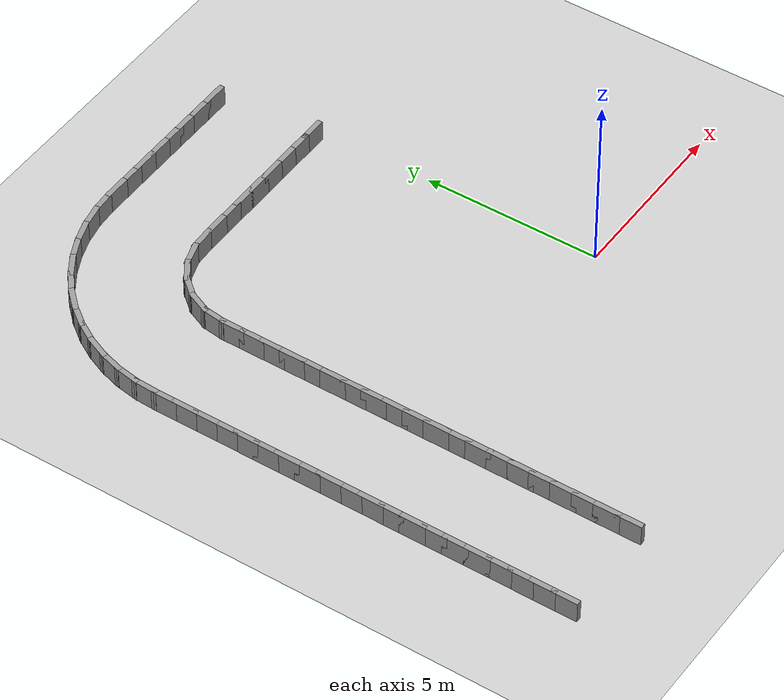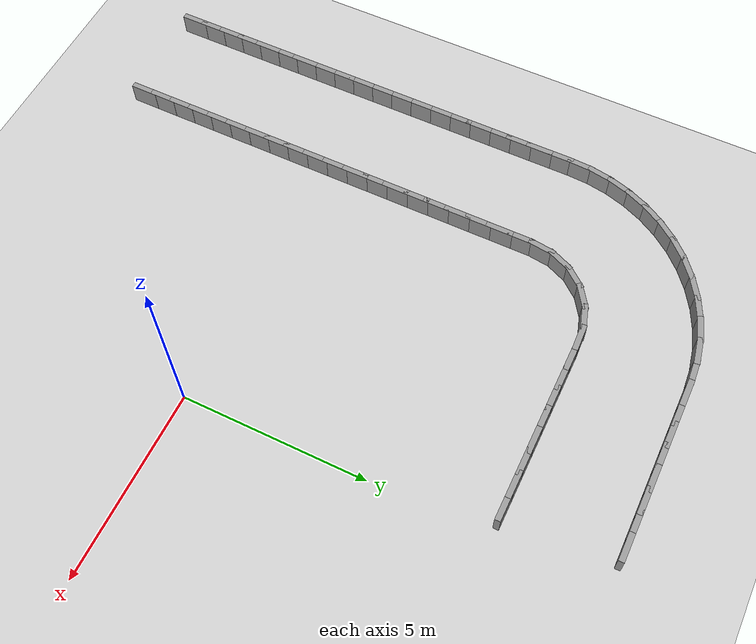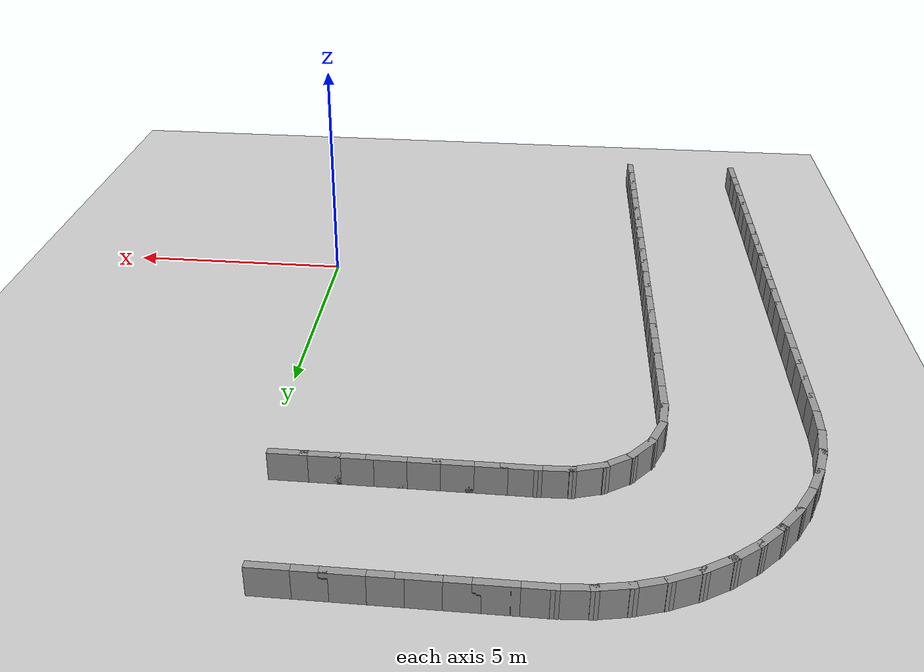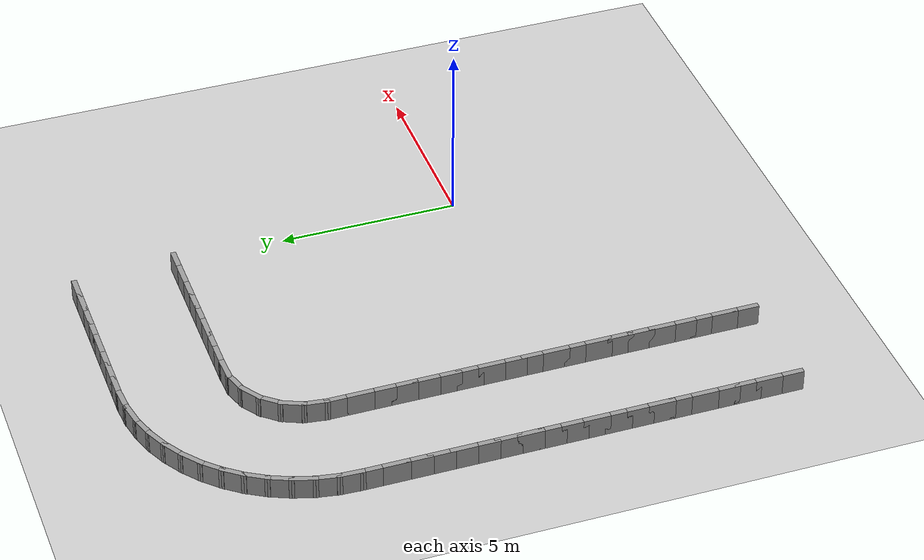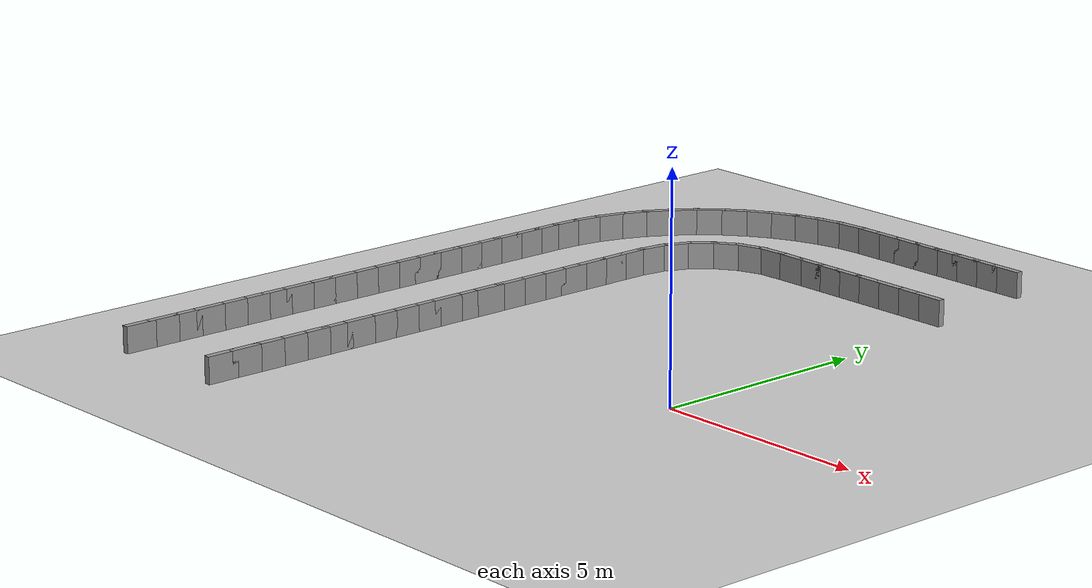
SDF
<sdf version="1.7">
 <world name="default">
  <model name="ground_plane">
   <static>1</static>
   <link name="link">
    <collision name="collision">
     <geometry><plane><normal>0 0 1</normal><size>100 100</size></plane></geometry>
     <surface><friction><ode><mu>100</mu><mu2>50</mu2></ode></friction></surface>
    </collision>
    <visual name="visual">
     <cast_shadows>0</cast_shadows>
     <geometry><plane><normal>0 0 1</normal><size>100 100</size></plane></geometry>
     <material>
      <script><uri>file://media/materials/scripts/gazebo.material</uri><name>Gazebo/Grey</name></script>
     </material>
    </visual>
   </link>
  </model>
  <model name="rand_rrect_00">
   <link name="Wall_15">
    <collision name="Wall_15_Collision">
     <geometry><box><size>0.7500 0.1500 0.6000</size></box></geometry>
     <pose>0 0 0.3000 0 -0 0</pose>
    </collision>
    <visual name="Wall_15_Visual">
     <pose>0 0 0.3000 0 -0 0</pose>
     <geometry><box><size>0.7500 0.1500 0.6000</size></box></geometry>
     <material>
      <script><uri>file://media/materials/scripts/gazebo.material</uri><name>Gazebo/Grey</name></script>
      <ambient>1 1 1 1</ambient>
     </material>
    </visual>
    <pose>-0.6151 8.1864 0 0 -0 3.14159</pose>
   </link>
   <link name="Wall_16">
    <collision name="Wall_16_Collision">
     <geometry><box><size>0.7500 0.1500 0.6000</size></box></geometry>
     <pose>0 0 0.3000 0 -0 0</pose>
    </collision>
    <visual name="Wall_16_Visual">
     <pose>0 0 0.3000 0 -0 0</pose>
     <geometry><box><size>0.7500 0.1500 0.6000</size></box></geometry>
     <material>
      <script><uri>file://media/materials/scripts/gazebo.material</uri><name>Gazebo/Grey</name></script>
      <ambient>1 1 1 1</ambient>
     </material>
    </visual>
    <pose>-1.2151 8.1864 0 0 -0 3.14159</pose>
   </link>
   <link name="Wall_17">
    <collision name="Wall_17_Collision">
     <geometry><box><size>0.7500 0.1500 0.6000</size></box></geometry>
     <pose>0 0 0.3000 0 -0 0</pose>
    </collision>
    <visual name="Wall_17_Visual">
     <pose>0 0 0.3000 0 -0 0</pose>
     <geometry><box><size>0.7500 0.1500 0.6000</size></box></geometry>
     <material>
      <script><uri>file://media/materials/scripts/gazebo.material</uri><name>Gazebo/Grey</name></script>
      <ambient>1 1 1 1</ambient>
     </material>
    </visual>
    <pose>-1.8151 8.1864 0 0 -0 3.14159</pose>
   </link>
   <link name="Wall_18">
    <collision name="Wall_18_Collision">
     <geometry><box><size>0.7500 0.1500 0.6000</size></box></geometry>
     <pose>0 0 0.3000 0 -0 0</pose>
    </collision>
    <visual name="Wall_18_Visual">
     <pose>0 0 0.3000 0 -0 0</pose>
     <geometry><box><size>0.7500 0.1500 0.6000</size></box></geometry>
     <material>
      <script><uri>file://media/materials/scripts/gazebo.material</uri><name>Gazebo/Grey</name></script>
      <ambient>1 1 1 1</ambient>
     </material>
    </visual>
    <pose>-2.4151 8.1864 0 0 -0 3.14159</pose>
   </link>
   <link name="Wall_19">
    <collision name="Wall_19_Collision">
     <geometry><box><size>0.7500 0.1500 0.6000</size></box></geometry>
     <pose>0 0 0.3000 0 -0 0</pose>
    </collision>
    <visual name="Wall_19_Visual">
     <pose>0 0 0.3000 0 -0 0</pose>
     <geometry><box><size>0.7500 0.1500 0.6000</size></box></geometry>
     <material>
      <script><uri>file://media/materials/scripts/gazebo.material</uri><name>Gazebo/Grey</name></script>
      <ambient>1 1 1 1</ambient>
     </material>
    </visual>
    <pose>-3.0151 8.1864 0 0 -0 3.14159</pose>
   </link>
   <link name="Wall_20">
    <collision name="Wall_20_Collision">
     <geometry><box><size>0.7500 0.1500 0.6000</size></box></geometry>
     <pose>0 0 0.3000 0 -0 0</pose>
    </collision>
    <visual name="Wall_20_Visual">
     <pose>0 0 0.3000 0 -0 0</pose>
     <geometry><box><size>0.7500 0.1500 0.6000</size></box></geometry>
     <material>
      <script><uri>file://media/materials/scripts/gazebo.material</uri><name>Gazebo/Grey</name></script>
      <ambient>1 1 1 1</ambient>
     </material>
    </visual>
    <pose>-3.6151 8.1864 0 0 -0 3.14159</pose>
   </link>
   <link name="Wall_21">
    <collision name="Wall_21_Collision">
     <geometry><box><size>0.7500 0.1500 0.6000</size></box></geometry>
     <pose>0 0 0.3000 0 -0 0</pose>
    </collision>
    <visual name="Wall_21_Visual">
     <pose>0 0 0.3000 0 -0 0</pose>
     <geometry><box><size>0.7500 0.1500 0.6000</size></box></geometry>
     <material>
      <script><uri>file://media/materials/scripts/gazebo.material</uri><name>Gazebo/Grey</name></script>
      <ambient>1 1 1 1</ambient>
     </material>
    </visual>
    <pose>-4.2151 8.1864 0 0 -0 3.14159</pose>
   </link>
   <link name="Wall_22">
    <collision name="Wall_22_Collision">
     <geometry><box><size>0.7500 0.1500 0.6000</size></box></geometry>
     <pose>0 0 0.3000 0 -0 0</pose>
    </collision>
    <visual name="Wall_22_Visual">
     <pose>0 0 0.3000 0 -0 0</pose>
     <geometry><box><size>0.7500 0.1500 0.6000</size></box></geometry>
     <material>
      <script><uri>file://media/materials/scripts/gazebo.material</uri><name>Gazebo/Grey</name></script>
      <ambient>1 1 1 1</ambient>
     </material>
    </visual>
    <pose>-4.8151 8.1864 0 0 -0 3.14159</pose>
   </link>
   <link name="Wall_23">
    <collision name="Wall_23_Collision">
     <geometry><box><size>0.7492 0.1500 0.6000</size></box></geometry>
     <pose>0 0 0.3000 0 -0 0</pose>
    </collision>
    <visual name="Wall_23_Visual">
     <pose>0 0 0.3000 0 -0 0</pose>
     <geometry><box><size>0.7492 0.1500 0.6000</size></box></geometry>
     <material>
      <script><uri>file://media/materials/scripts/gazebo.material</uri><name>Gazebo/Grey</name></script>
      <ambient>1 1 1 1</ambient>
     </material>
    </visual>
    <pose>-5.4144 8.1730 0 0 -0 -3.09682</pose>
   </link>
   <link name="Wall_24">
    <collision name="Wall_24_Collision">
     <geometry><box><size>0.7480 0.1500 0.6000</size></box></geometry>
     <pose>0 0 0.3000 0 -0 0</pose>
    </collision>
    <visual name="Wall_24_Visual">
     <pose>0 0 0.3000 0 -0 0</pose>
     <geometry><box><size>0.7480 0.1500 0.6000</size></box></geometry>
     <material>
      <script><uri>file://media/materials/scripts/gazebo.material</uri><name>Gazebo/Grey</name></script>
      <ambient>1 1 1 1</ambient>
     </material>
    </visual>
    <pose>-5.9991 8.0706 0 0 -0 -2.83928</pose>
   </link>
   <link name="Wall_25">
    <collision name="Wall_25_Collision">
     <geometry><box><size>0.7480 0.1500 0.6000</size></box></geometry>
     <pose>0 0 0.3000 0 -0 0</pose>
    </collision>
    <visual name="Wall_25_Visual">
     <pose>0 0 0.3000 0 -0 0</pose>
     <geometry><box><size>0.7480 0.1500 0.6000</size></box></geometry>
     <material>
      <script><uri>file://media/materials/scripts/gazebo.material</uri><name>Gazebo/Grey</name></script>
      <ambient>1 1 1 1</ambient>
     </material>
    </visual>
    <pose>-6.5334 7.8159 0 0 -0 -2.55420</pose>
   </link>
   <link name="Wall_26">
    <collision name="Wall_26_Collision">
     <geometry><box><size>0.7480 0.1500 0.6000</size></box></geometry>
     <pose>0 0 0.3000 0 -0 0</pose>
    </collision>
    <visual name="Wall_26_Visual">
     <pose>0 0 0.3000 0 -0 0</pose>
     <geometry><box><size>0.7480 0.1500 0.6000</size></box></geometry>
     <material>
      <script><uri>file://media/materials/scripts/gazebo.material</uri><name>Gazebo/Grey</name></script>
      <ambient>1 1 1 1</ambient>
     </material>
    </visual>
    <pose>-6.9745 7.4212 0 0 -0 -2.26912</pose>
   </link>
   <link name="Wall_27">
    <collision name="Wall_27_Collision">
     <geometry><box><size>0.7480 0.1500 0.6000</size></box></geometry>
     <pose>0 0 0.3000 0 -0 0</pose>
    </collision>
    <visual name="Wall_27_Visual">
     <pose>0 0 0.3000 0 -0 0</pose>
     <geometry><box><size>0.7480 0.1500 0.6000</size></box></geometry>
     <material>
      <script><uri>file://media/materials/scripts/gazebo.material</uri><name>Gazebo/Grey</name></script>
      <ambient>1 1 1 1</ambient>
     </material>
    </visual>
    <pose>-7.2868 6.9184 0 0 -0 -1.98406</pose>
   </link>
   <link name="Wall_28">
    <collision name="Wall_28_Collision">
     <geometry><box><size>0.7480 0.1500 0.6000</size></box></geometry>
     <pose>0 0 0.3000 0 -0 0</pose>
    </collision>
    <visual name="Wall_28_Visual">
     <pose>0 0 0.3000 0 -0 0</pose>
     <geometry><box><size>0.7480 0.1500 0.6000</size></box></geometry>
     <material>
      <script><uri>file://media/materials/scripts/gazebo.material</uri><name>Gazebo/Grey</name></script>
      <ambient>1 1 1 1</ambient>
     </material>
    </visual>
    <pose>-7.4452 6.3480 0 0 -0 -1.69935</pose>
   </link>
   <link name="Wall_29">
    <collision name="Wall_29_Collision">
     <geometry><box><size>0.7500 0.1500 0.6000</size></box></geometry>
     <pose>0 0 0.3000 0 -0 0</pose>
    </collision>
    <visual name="Wall_29_Visual">
     <pose>0 0 0.3000 0 -0 0</pose>
     <geometry><box><size>0.7500 0.1500 0.6000</size></box></geometry>
     <material>
      <script><uri>file://media/materials/scripts/gazebo.material</uri><name>Gazebo/Grey</name></script>
      <ambient>1 1 1 1</ambient>
     </material>
    </visual>
    <pose>-7.4835 5.7515 0 0 -0 -1.57080</pose>
   </link>
   <link name="Wall_30">
    <collision name="Wall_30_Collision">
     <geometry><box><size>0.7500 0.1500 0.6000</size></box></geometry>
     <pose>0 0 0.3000 0 -0 0</pose>
    </collision>
    <visual name="Wall_30_Visual">
     <pose>0 0 0.3000 0 -0 0</pose>
     <geometry><box><size>0.7500 0.1500 0.6000</size></box></geometry>
     <material>
      <script><uri>file://media/materials/scripts/gazebo.material</uri><name>Gazebo/Grey</name></script>
      <ambient>1 1 1 1</ambient>
     </material>
    </visual>
    <pose>-7.4835 5.1515 0 0 -0 -1.57080</pose>
   </link>
   <link name="Wall_31">
    <collision name="Wall_31_Collision">
     <geometry><box><size>0.7500 0.1500 0.6000</size></box></geometry>
     <pose>0 0 0.3000 0 -0 0</pose>
    </collision>
    <visual name="Wall_31_Visual">
     <pose>0 0 0.3000 0 -0 0</pose>
     <geometry><box><size>0.7500 0.1500 0.6000</size></box></geometry>
     <material>
      <script><uri>file://media/materials/scripts/gazebo.material</uri><name>Gazebo/Grey</name></script>
      <ambient>1 1 1 1</ambient>
     </material>
    </visual>
    <pose>-7.4835 4.5515 0 0 -0 -1.57080</pose>
   </link>
   <link name="Wall_32">
    <collision name="Wall_32_Collision">
     <geometry><box><size>0.7500 0.1500 0.6000</size></box></geometry>
     <pose>0 0 0.3000 0 -0 0</pose>
    </collision>
    <visual name="Wall_32_Visual">
     <pose>0 0 0.3000 0 -0 0</pose>
     <geometry><box><size>0.7500 0.1500 0.6000</size></box></geometry>
     <material>
      <script><uri>file://media/materials/scripts/gazebo.material</uri><name>Gazebo/Grey</name></script>
      <ambient>1 1 1 1</ambient>
     </material>
    </visual>
    <pose>-7.4835 3.9515 0 0 -0 -1.57080</pose>
   </link>
   <link name="Wall_33">
    <collision name="Wall_33_Collision">
     <geometry><box><size>0.7500 0.1500 0.6000</size></box></geometry>
     <pose>0 0 0.3000 0 -0 0</pose>
    </collision>
    <visual name="Wall_33_Visual">
     <pose>0 0 0.3000 0 -0 0</pose>
     <geometry><box><size>0.7500 0.1500 0.6000</size></box></geometry>
     <material>
      <script><uri>file://media/materials/scripts/gazebo.material</uri><name>Gazebo/Grey</name></script>
      <ambient>1 1 1 1</ambient>
     </material>
    </visual>
    <pose>-7.4835 3.3515 0 0 -0 -1.57080</pose>
   </link>
   <link name="Wall_34">
    <collision name="Wall_34_Collision">
     <geometry><box><size>0.7500 0.1500 0.6000</size></box></geometry>
     <pose>0 0 0.3000 0 -0 0</pose>
    </collision>
    <visual name="Wall_34_Visual">
     <pose>0 0 0.3000 0 -0 0</pose>
     <geometry><box><size>0.7500 0.1500 0.6000</size></box></geometry>
     <material>
      <script><uri>file://media/materials/scripts/gazebo.material</uri><name>Gazebo/Grey</name></script>
      <ambient>1 1 1 1</ambient>
     </material>
    </visual>
    <pose>-7.4835 2.7515 0 0 -0 -1.57080</pose>
   </link>
   <link name="Wall_35">
    <collision name="Wall_35_Collision">
     <geometry><box><size>0.7500 0.1500 0.6000</size></box></geometry>
     <pose>0 0 0.3000 0 -0 0</pose>
    </collision>
    <visual name="Wall_35_Visual">
     <pose>0 0 0.3000 0 -0 0</pose>
     <geometry><box><size>0.7500 0.1500 0.6000</size></box></geometry>
     <material>
      <script><uri>file://media/materials/scripts/gazebo.material</uri><name>Gazebo/Grey</name></script>
      <ambient>1 1 1 1</ambient>
     </material>
    </visual>
    <pose>-7.4835 2.1515 0 0 -0 -1.57080</pose>
   </link>
   <link name="Wall_36">
    <collision name="Wall_36_Collision">
     <geometry><box><size>0.7500 0.1500 0.6000</size></box></geometry>
     <pose>0 0 0.3000 0 -0 0</pose>
    </collision>
    <visual name="Wall_36_Visual">
     <pose>0 0 0.3000 0 -0 0</pose>
     <geometry><box><size>0.7500 0.1500 0.6000</size></box></geometry>
     <material>
      <script><uri>file://media/materials/scripts/gazebo.material</uri><name>Gazebo/Grey</name></script>
      <ambient>1 1 1 1</ambient>
     </material>
    </visual>
    <pose>-7.4835 1.5515 0 0 -0 -1.57080</pose>
   </link>
   <link name="Wall_37">
    <collision name="Wall_37_Collision">
     <geometry><box><size>0.7500 0.1500 0.6000</size></box></geometry>
     <pose>0 0 0.3000 0 -0 0</pose>
    </collision>
    <visual name="Wall_37_Visual">
     <pose>0 0 0.3000 0 -0 0</pose>
     <geometry><box><size>0.7500 0.1500 0.6000</size></box></geometry>
     <material>
      <script><uri>file://media/materials/scripts/gazebo.material</uri><name>Gazebo/Grey</name></script>
      <ambient>1 1 1 1</ambient>
     </material>
    </visual>
    <pose>-7.4835 0.9515 0 0 -0 -1.57080</pose>
   </link>
   <link name="Wall_38">
    <collision name="Wall_38_Collision">
     <geometry><box><size>0.7500 0.1500 0.6000</size></box></geometry>
     <pose>0 0 0.3000 0 -0 0</pose>
    </collision>
    <visual name="Wall_38_Visual">
     <pose>0 0 0.3000 0 -0 0</pose>
     <geometry><box><size>0.7500 0.1500 0.6000</size></box></geometry>
     <material>
      <script><uri>file://media/materials/scripts/gazebo.material</uri><name>Gazebo/Grey</name></script>
      <ambient>1 1 1 1</ambient>
     </material>
    </visual>
    <pose>-7.4835 0.3515 0 0 -0 -1.57080</pose>
   </link>
   <link name="Wall_39">
    <collision name="Wall_39_Collision">
     <geometry><box><size>0.7500 0.1500 0.6000</size></box></geometry>
     <pose>0 0 0.3000 0 -0 0</pose>
    </collision>
    <visual name="Wall_39_Visual">
     <pose>0 0 0.3000 0 -0 0</pose>
     <geometry><box><size>0.7500 0.1500 0.6000</size></box></geometry>
     <material>
      <script><uri>file://media/materials/scripts/gazebo.material</uri><name>Gazebo/Grey</name></script>
      <ambient>1 1 1 1</ambient>
     </material>
    </visual>
    <pose>-7.4835 -0.2485 0 0 -0 -1.57080</pose>
   </link>
   <link name="Wall_40">
    <collision name="Wall_40_Collision">
     <geometry><box><size>0.7500 0.1500 0.6000</size></box></geometry>
     <pose>0 0 0.3000 0 -0 0</pose>
    </collision>
    <visual name="Wall_40_Visual">
     <pose>0 0 0.3000 0 -0 0</pose>
     <geometry><box><size>0.7500 0.1500 0.6000</size></box></geometry>
     <material>
      <script><uri>file://media/materials/scripts/gazebo.material</uri><name>Gazebo/Grey</name></script>
      <ambient>1 1 1 1</ambient>
     </material>
    </visual>
    <pose>-7.4835 -0.8485 0 0 -0 -1.57080</pose>
   </link>
   <link name="Wall_41">
    <collision name="Wall_41_Collision">
     <geometry><box><size>0.7500 0.1500 0.6000</size></box></geometry>
     <pose>0 0 0.3000 0 -0 0</pose>
    </collision>
    <visual name="Wall_41_Visual">
     <pose>0 0 0.3000 0 -0 0</pose>
     <geometry><box><size>0.7500 0.1500 0.6000</size></box></geometry>
     <material>
      <script><uri>file://media/materials/scripts/gazebo.material</uri><name>Gazebo/Grey</name></script>
      <ambient>1 1 1 1</ambient>
     </material>
    </visual>
    <pose>-7.4835 -1.4485 0 0 -0 -1.57080</pose>
   </link>
   <link name="Wall_42">
    <collision name="Wall_42_Collision">
     <geometry><box><size>0.7500 0.1500 0.6000</size></box></geometry>
     <pose>0 0 0.3000 0 -0 0</pose>
    </collision>
    <visual name="Wall_42_Visual">
     <pose>0 0 0.3000 0 -0 0</pose>
     <geometry><box><size>0.7500 0.1500 0.6000</size></box></geometry>
     <material>
      <script><uri>file://media/materials/scripts/gazebo.material</uri><name>Gazebo/Grey</name></script>
      <ambient>1 1 1 1</ambient>
     </material>
    </visual>
    <pose>-7.4835 -2.0485 0 0 -0 -1.57080</pose>
   </link>
   <link name="Wall_43">
    <collision name="Wall_43_Collision">
     <geometry><box><size>0.7500 0.1500 0.6000</size></box></geometry>
     <pose>0 0 0.3000 0 -0 0</pose>
    </collision>
    <visual name="Wall_43_Visual">
     <pose>0 0 0.3000 0 -0 0</pose>
     <geometry><box><size>0.7500 0.1500 0.6000</size></box></geometry>
     <material>
      <script><uri>file://media/materials/scripts/gazebo.material</uri><name>Gazebo/Grey</name></script>
      <ambient>1 1 1 1</ambient>
     </material>
    </visual>
    <pose>-7.4835 -2.6485 0 0 -0 -1.57080</pose>
   </link>
   <link name="Wall_44">
    <collision name="Wall_44_Collision">
     <geometry><box><size>0.7500 0.1500 0.6000</size></box></geometry>
     <pose>0 0 0.3000 0 -0 0</pose>
    </collision>
    <visual name="Wall_44_Visual">
     <pose>0 0 0.3000 0 -0 0</pose>
     <geometry><box><size>0.7500 0.1500 0.6000</size></box></geometry>
     <material>
      <script><uri>file://media/materials/scripts/gazebo.material</uri><name>Gazebo/Grey</name></script>
      <ambient>1 1 1 1</ambient>
     </material>
    </visual>
    <pose>-7.4835 -3.2485 0 0 -0 -1.57080</pose>
   </link>
   <link name="Wall_45">
    <collision name="Wall_45_Collision">
     <geometry><box><size>0.7500 0.1500 0.6000</size></box></geometry>
     <pose>0 0 0.3000 0 -0 0</pose>
    </collision>
    <visual name="Wall_45_Visual">
     <pose>0 0 0.3000 0 -0 0</pose>
     <geometry><box><size>0.7500 0.1500 0.6000</size></box></geometry>
     <material>
      <script><uri>file://media/materials/scripts/gazebo.material</uri><name>Gazebo/Grey</name></script>
      <ambient>1 1 1 1</ambient>
     </material>
    </visual>
    <pose>-7.4835 -3.8485 0 0 -0 -1.57080</pose>
   </link>
   <link name="Wall_46">
    <collision name="Wall_46_Collision">
     <geometry><box><size>0.7500 0.1500 0.6000</size></box></geometry>
     <pose>0 0 0.3000 0 -0 0</pose>
    </collision>
    <visual name="Wall_46_Visual">
     <pose>0 0 0.3000 0 -0 0</pose>
     <geometry><box><size>0.7500 0.1500 0.6000</size></box></geometry>
     <material>
      <script><uri>file://media/materials/scripts/gazebo.material</uri><name>Gazebo/Grey</name></script>
      <ambient>1 1 1 1</ambient>
     </material>
    </visual>
    <pose>-7.4835 -4.4485 0 0 -0 -1.57080</pose>
   </link>
   <link name="Wall_47">
    <collision name="Wall_47_Collision">
     <geometry><box><size>0.7500 0.1500 0.6000</size></box></geometry>
     <pose>0 0 0.3000 0 -0 0</pose>
    </collision>
    <visual name="Wall_47_Visual">
     <pose>0 0 0.3000 0 -0 0</pose>
     <geometry><box><size>0.7500 0.1500 0.6000</size></box></geometry>
     <material>
      <script><uri>file://media/materials/scripts/gazebo.material</uri><name>Gazebo/Grey</name></script>
      <ambient>1 1 1 1</ambient>
     </material>
    </visual>
    <pose>-7.4835 -5.0485 0 0 -0 -1.57080</pose>
   </link>
   <link name="Wall_48">
    <collision name="Wall_48_Collision">
     <geometry><box><size>0.7500 0.1500 0.6000</size></box></geometry>
     <pose>0 0 0.3000 0 -0 0</pose>
    </collision>
    <visual name="Wall_48_Visual">
     <pose>0 0 0.3000 0 -0 0</pose>
     <geometry><box><size>0.7500 0.1500 0.6000</size></box></geometry>
     <material>
      <script><uri>file://media/materials/scripts/gazebo.material</uri><name>Gazebo/Grey</name></script>
      <ambient>1 1 1 1</ambient>
     </material>
    </visual>
    <pose>-7.4835 -5.6485 0 0 -0 -1.57080</pose>
   </link>
   <link name="Wall_121">
    <collision name="Wall_121_Collision">
     <geometry><box><size>0.7500 0.1500 0.6000</size></box></geometry>
     <pose>0 0 0.3000 0 -0 0</pose>
    </collision>
    <visual name="Wall_121_Visual">
     <pose>0 0 0.3000 0 -0 0</pose>
     <geometry><box><size>0.7500 0.1500 0.6000</size></box></geometry>
     <material>
      <script><uri>file://media/materials/scripts/gazebo.material</uri><name>Gazebo/Grey</name></script>
      <ambient>1 1 1 1</ambient>
     </material>
    </visual>
    <pose>-0.9345 11.0389 0 0 -0 3.14159</pose>
   </link>
   <link name="Wall_122">
    <collision name="Wall_122_Collision">
     <geometry><box><size>0.7500 0.1500 0.6000</size></box></geometry>
     <pose>0 0 0.3000 0 -0 0</pose>
    </collision>
    <visual name="Wall_122_Visual">
     <pose>0 0 0.3000 0 -0 0</pose>
     <geometry><box><size>0.7500 0.1500 0.6000</size></box></geometry>
     <material>
      <script><uri>file://media/materials/scripts/gazebo.material</uri><name>Gazebo/Grey</name></script>
      <ambient>1 1 1 1</ambient>
     </material>
    </visual>
    <pose>-1.5345 11.0389 0 0 -0 3.14159</pose>
   </link>
   <link name="Wall_123">
    <collision name="Wall_123_Collision">
     <geometry><box><size>0.7500 0.1500 0.6000</size></box></geometry>
     <pose>0 0 0.3000 0 -0 0</pose>
    </collision>
    <visual name="Wall_123_Visual">
     <pose>0 0 0.3000 0 -0 0</pose>
     <geometry><box><size>0.7500 0.1500 0.6000</size></box></geometry>
     <material>
      <script><uri>file://media/materials/scripts/gazebo.material</uri><name>Gazebo/Grey</name></script>
      <ambient>1 1 1 1</ambient>
     </material>
    </visual>
    <pose>-2.1345 11.0389 0 0 -0 3.14159</pose>
   </link>
   <link name="Wall_124">
    <collision name="Wall_124_Collision">
     <geometry><box><size>0.7500 0.1500 0.6000</size></box></geometry>
     <pose>0 0 0.3000 0 -0 0</pose>
    </collision>
    <visual name="Wall_124_Visual">
     <pose>0 0 0.3000 0 -0 0</pose>
     <geometry><box><size>0.7500 0.1500 0.6000</size></box></geometry>
     <material>
      <script><uri>file://media/materials/scripts/gazebo.material</uri><name>Gazebo/Grey</name></script>
      <ambient>1 1 1 1</ambient>
     </material>
    </visual>
    <pose>-2.7345 11.0389 0 0 -0 3.14159</pose>
   </link>
   <link name="Wall_125">
    <collision name="Wall_125_Collision">
     <geometry><box><size>0.7500 0.1500 0.6000</size></box></geometry>
     <pose>0 0 0.3000 0 -0 0</pose>
    </collision>
    <visual name="Wall_125_Visual">
     <pose>0 0 0.3000 0 -0 0</pose>
     <geometry><box><size>0.7500 0.1500 0.6000</size></box></geometry>
     <material>
      <script><uri>file://media/materials/scripts/gazebo.material</uri><name>Gazebo/Grey</name></script>
      <ambient>1 1 1 1</ambient>
     </material>
    </visual>
    <pose>-3.3345 11.0389 0 0 -0 3.14159</pose>
   </link>
   <link name="Wall_126">
    <collision name="Wall_126_Collision">
     <geometry><box><size>0.7500 0.1500 0.6000</size></box></geometry>
     <pose>0 0 0.3000 0 -0 0</pose>
    </collision>
    <visual name="Wall_126_Visual">
     <pose>0 0 0.3000 0 -0 0</pose>
     <geometry><box><size>0.7500 0.1500 0.6000</size></box></geometry>
     <material>
      <script><uri>file://media/materials/scripts/gazebo.material</uri><name>Gazebo/Grey</name></script>
      <ambient>1 1 1 1</ambient>
     </material>
    </visual>
    <pose>-3.9345 11.0389 0 0 -0 3.14159</pose>
   </link>
   <link name="Wall_127">
    <collision name="Wall_127_Collision">
     <geometry><box><size>0.7500 0.1500 0.6000</size></box></geometry>
     <pose>0 0 0.3000 0 -0 0</pose>
    </collision>
    <visual name="Wall_127_Visual">
     <pose>0 0 0.3000 0 -0 0</pose>
     <geometry><box><size>0.7500 0.1500 0.6000</size></box></geometry>
     <material>
      <script><uri>file://media/materials/scripts/gazebo.material</uri><name>Gazebo/Grey</name></script>
      <ambient>1 1 1 1</ambient>
     </material>
    </visual>
    <pose>-4.5345 11.0389 0 0 -0 3.14159</pose>
   </link>
   <link name="Wall_128">
    <collision name="Wall_128_Collision">
     <geometry><box><size>0.7500 0.1500 0.6000</size></box></geometry>
     <pose>0 0 0.3000 0 -0 0</pose>
    </collision>
    <visual name="Wall_128_Visual">
     <pose>0 0 0.3000 0 -0 0</pose>
     <geometry><box><size>0.7500 0.1500 0.6000</size></box></geometry>
     <material>
      <script><uri>file://media/materials/scripts/gazebo.material</uri><name>Gazebo/Grey</name></script>
      <ambient>1 1 1 1</ambient>
     </material>
    </visual>
    <pose>-5.1345 11.0387 0 0 -0 -3.14105</pose>
   </link>
   <link name="Wall_129">
    <collision name="Wall_129_Collision">
     <geometry><box><size>0.7496 0.1500 0.6000</size></box></geometry>
     <pose>0 0 0.3000 0 -0 0</pose>
    </collision>
    <visual name="Wall_129_Visual">
     <pose>0 0 0.3000 0 -0 0</pose>
     <geometry><box><size>0.7496 0.1500 0.6000</size></box></geometry>
     <material>
      <script><uri>file://media/materials/scripts/gazebo.material</uri><name>Gazebo/Grey</name></script>
      <ambient>1 1 1 1</ambient>
     </material>
    </visual>
    <pose>-5.7335 11.0171 0 0 -0 -3.06985</pose>
   </link>
   <link name="Wall_130">
    <collision name="Wall_130_Collision">
     <geometry><box><size>0.7496 0.1500 0.6000</size></box></geometry>
     <pose>0 0 0.3000 0 -0 0</pose>
    </collision>
    <visual name="Wall_130_Visual">
     <pose>0 0 0.3000 0 -0 0</pose>
     <geometry><box><size>0.7496 0.1500 0.6000</size></box></geometry>
     <material>
      <script><uri>file://media/materials/scripts/gazebo.material</uri><name>Gazebo/Grey</name></script>
      <ambient>1 1 1 1</ambient>
     </material>
    </visual>
    <pose>-6.3268 10.9381 0 0 -0 -2.94881</pose>
   </link>
   <link name="Wall_131">
    <collision name="Wall_131_Collision">
     <geometry><box><size>0.7496 0.1500 0.6000</size></box></geometry>
     <pose>0 0 0.3000 0 -0 0</pose>
    </collision>
    <visual name="Wall_131_Visual">
     <pose>0 0 0.3000 0 -0 0</pose>
     <geometry><box><size>0.7496 0.1500 0.6000</size></box></geometry>
     <material>
      <script><uri>file://media/materials/scripts/gazebo.material</uri><name>Gazebo/Grey</name></script>
      <ambient>1 1 1 1</ambient>
     </material>
    </visual>
    <pose>-6.9062 10.7882 0 0 -0 -2.82778</pose>
   </link>
   <link name="Wall_132">
    <collision name="Wall_132_Collision">
     <geometry><box><size>0.7496 0.1500 0.6000</size></box></geometry>
     <pose>0 0 0.3000 0 -0 0</pose>
    </collision>
    <visual name="Wall_132_Visual">
     <pose>0 0 0.3000 0 -0 0</pose>
     <geometry><box><size>0.7496 0.1500 0.6000</size></box></geometry>
     <material>
      <script><uri>file://media/materials/scripts/gazebo.material</uri><name>Gazebo/Grey</name></script>
      <ambient>1 1 1 1</ambient>
     </material>
    </visual>
    <pose>-7.4633 10.5693 0 0 -0 -2.70674</pose>
   </link>
   <link name="Wall_133">
    <collision name="Wall_133_Collision">
     <geometry><box><size>0.7496 0.1500 0.6000</size></box></geometry>
     <pose>0 0 0.3000 0 -0 0</pose>
    </collision>
    <visual name="Wall_133_Visual">
     <pose>0 0 0.3000 0 -0 0</pose>
     <geometry><box><size>0.7496 0.1500 0.6000</size></box></geometry>
     <material>
      <script><uri>file://media/materials/scripts/gazebo.material</uri><name>Gazebo/Grey</name></script>
      <ambient>1 1 1 1</ambient>
     </material>
    </visual>
    <pose>-7.9899 10.2848 0 0 -0 -2.58570</pose>
   </link>
   <link name="Wall_134">
    <collision name="Wall_134_Collision">
     <geometry><box><size>0.7496 0.1500 0.6000</size></box></geometry>
     <pose>0 0 0.3000 0 -0 0</pose>
    </collision>
    <visual name="Wall_134_Visual">
     <pose>0 0 0.3000 0 -0 0</pose>
     <geometry><box><size>0.7496 0.1500 0.6000</size></box></geometry>
     <material>
      <script><uri>file://media/materials/scripts/gazebo.material</uri><name>Gazebo/Grey</name></script>
      <ambient>1 1 1 1</ambient>
     </material>
    </visual>
    <pose>-8.4783 9.9388 0 0 -0 -2.46466</pose>
   </link>
   <link name="Wall_135">
    <collision name="Wall_135_Collision">
     <geometry><box><size>0.7496 0.1500 0.6000</size></box></geometry>
     <pose>0 0 0.3000 0 -0 0</pose>
    </collision>
    <visual name="Wall_135_Visual">
     <pose>0 0 0.3000 0 -0 0</pose>
     <geometry><box><size>0.7496 0.1500 0.6000</size></box></geometry>
     <material>
      <script><uri>file://media/materials/scripts/gazebo.material</uri><name>Gazebo/Grey</name></script>
      <ambient>1 1 1 1</ambient>
     </material>
    </visual>
    <pose>-8.9213 9.5363 0 0 -0 -2.34362</pose>
   </link>
   <link name="Wall_136">
    <collision name="Wall_136_Collision">
     <geometry><box><size>0.7496 0.1500 0.6000</size></box></geometry>
     <pose>0 0 0.3000 0 -0 0</pose>
    </collision>
    <visual name="Wall_136_Visual">
     <pose>0 0 0.3000 0 -0 0</pose>
     <geometry><box><size>0.7496 0.1500 0.6000</size></box></geometry>
     <material>
      <script><uri>file://media/materials/scripts/gazebo.material</uri><name>Gazebo/Grey</name></script>
      <ambient>1 1 1 1</ambient>
     </material>
    </visual>
    <pose>-9.3125 9.0833 0 0 -0 -2.22259</pose>
   </link>
   <link name="Wall_137">
    <collision name="Wall_137_Collision">
     <geometry><box><size>0.7496 0.1500 0.6000</size></box></geometry>
     <pose>0 0 0.3000 0 -0 0</pose>
    </collision>
    <visual name="Wall_137_Visual">
     <pose>0 0 0.3000 0 -0 0</pose>
     <geometry><box><size>0.7496 0.1500 0.6000</size></box></geometry>
     <material>
      <script><uri>file://media/materials/scripts/gazebo.material</uri><name>Gazebo/Grey</name></script>
      <ambient>1 1 1 1</ambient>
     </material>
    </visual>
    <pose>-9.6462 8.5864 0 0 -0 -2.10156</pose>
   </link>
   <link name="Wall_138">
    <collision name="Wall_138_Collision">
     <geometry><box><size>0.7496 0.1500 0.6000</size></box></geometry>
     <pose>0 0 0.3000 0 -0 0</pose>
    </collision>
    <visual name="Wall_138_Visual">
     <pose>0 0 0.3000 0 -0 0</pose>
     <geometry><box><size>0.7496 0.1500 0.6000</size></box></geometry>
     <material>
      <script><uri>file://media/materials/scripts/gazebo.material</uri><name>Gazebo/Grey</name></script>
      <ambient>1 1 1 1</ambient>
     </material>
    </visual>
    <pose>-9.9174 8.0528 0 0 -0 -1.98052</pose>
   </link>
   <link name="Wall_139">
    <collision name="Wall_139_Collision">
     <geometry><box><size>0.7496 0.1500 0.6000</size></box></geometry>
     <pose>0 0 0.3000 0 -0 0</pose>
    </collision>
    <visual name="Wall_139_Visual">
     <pose>0 0 0.3000 0 -0 0</pose>
     <geometry><box><size>0.7496 0.1500 0.6000</size></box></geometry>
     <material>
      <script><uri>file://media/materials/scripts/gazebo.material</uri><name>Gazebo/Grey</name></script>
      <ambient>1 1 1 1</ambient>
     </material>
    </visual>
    <pose>-10.1222 7.4904 0 0 -0 -1.85949</pose>
   </link>
   <link name="Wall_140">
    <collision name="Wall_140_Collision">
     <geometry><box><size>0.7496 0.1500 0.6000</size></box></geometry>
     <pose>0 0 0.3000 0 -0 0</pose>
    </collision>
    <visual name="Wall_140_Visual">
     <pose>0 0 0.3000 0 -0 0</pose>
     <geometry><box><size>0.7496 0.1500 0.6000</size></box></geometry>
     <material>
      <script><uri>file://media/materials/scripts/gazebo.material</uri><name>Gazebo/Grey</name></script>
      <ambient>1 1 1 1</ambient>
     </material>
    </visual>
    <pose>-10.2575 6.9074 0 0 -0 -1.73845</pose>
   </link>
   <link name="Wall_141">
    <collision name="Wall_141_Collision">
     <geometry><box><size>0.7497 0.1500 0.6000</size></box></geometry>
     <pose>0 0 0.3000 0 -0 0</pose>
    </collision>
    <visual name="Wall_141_Visual">
     <pose>0 0 0.3000 0 -0 0</pose>
     <geometry><box><size>0.7497 0.1500 0.6000</size></box></geometry>
     <material>
      <script><uri>file://media/materials/scripts/gazebo.material</uri><name>Gazebo/Grey</name></script>
      <ambient>1 1 1 1</ambient>
     </material>
    </visual>
    <pose>-10.3218 6.3123 0 0 -0 -1.61822</pose>
   </link>
   <link name="Wall_142">
    <collision name="Wall_142_Collision">
     <geometry><box><size>0.7500 0.1500 0.6000</size></box></geometry>
     <pose>0 0 0.3000 0 -0 0</pose>
    </collision>
    <visual name="Wall_142_Visual">
     <pose>0 0 0.3000 0 -0 0</pose>
     <geometry><box><size>0.7500 0.1500 0.6000</size></box></geometry>
     <material>
      <script><uri>file://media/materials/scripts/gazebo.material</uri><name>Gazebo/Grey</name></script>
      <ambient>1 1 1 1</ambient>
     </material>
    </visual>
    <pose>-10.3360 5.7128 0 0 -0 -1.57080</pose>
   </link>
   <link name="Wall_143">
    <collision name="Wall_143_Collision">
     <geometry><box><size>0.7500 0.1500 0.6000</size></box></geometry>
     <pose>0 0 0.3000 0 -0 0</pose>
    </collision>
    <visual name="Wall_143_Visual">
     <pose>0 0 0.3000 0 -0 0</pose>
     <geometry><box><size>0.7500 0.1500 0.6000</size></box></geometry>
     <material>
      <script><uri>file://media/materials/scripts/gazebo.material</uri><name>Gazebo/Grey</name></script>
      <ambient>1 1 1 1</ambient>
     </material>
    </visual>
    <pose>-10.3360 5.1128 0 0 -0 -1.57080</pose>
   </link>
   <link name="Wall_144">
    <collision name="Wall_144_Collision">
     <geometry><box><size>0.7500 0.1500 0.6000</size></box></geometry>
     <pose>0 0 0.3000 0 -0 0</pose>
    </collision>
    <visual name="Wall_144_Visual">
     <pose>0 0 0.3000 0 -0 0</pose>
     <geometry><box><size>0.7500 0.1500 0.6000</size></box></geometry>
     <material>
      <script><uri>file://media/materials/scripts/gazebo.material</uri><name>Gazebo/Grey</name></script>
      <ambient>1 1 1 1</ambient>
     </material>
    </visual>
    <pose>-10.3360 4.5128 0 0 -0 -1.57080</pose>
   </link>
   <link name="Wall_145">
    <collision name="Wall_145_Collision">
     <geometry><box><size>0.7500 0.1500 0.6000</size></box></geometry>
     <pose>0 0 0.3000 0 -0 0</pose>
    </collision>
    <visual name="Wall_145_Visual">
     <pose>0 0 0.3000 0 -0 0</pose>
     <geometry><box><size>0.7500 0.1500 0.6000</size></box></geometry>
     <material>
      <script><uri>file://media/materials/scripts/gazebo.material</uri><name>Gazebo/Grey</name></script>
      <ambient>1 1 1 1</ambient>
     </material>
    </visual>
    <pose>-10.3360 3.9128 0 0 -0 -1.57080</pose>
   </link>
   <link name="Wall_146">
    <collision name="Wall_146_Collision">
     <geometry><box><size>0.7500 0.1500 0.6000</size></box></geometry>
     <pose>0 0 0.3000 0 -0 0</pose>
    </collision>
    <visual name="Wall_146_Visual">
     <pose>0 0 0.3000 0 -0 0</pose>
     <geometry><box><size>0.7500 0.1500 0.6000</size></box></geometry>
     <material>
      <script><uri>file://media/materials/scripts/gazebo.material</uri><name>Gazebo/Grey</name></script>
      <ambient>1 1 1 1</ambient>
     </material>
    </visual>
    <pose>-10.3360 3.3128 0 0 -0 -1.57080</pose>
   </link>
   <link name="Wall_147">
    <collision name="Wall_147_Collision">
     <geometry><box><size>0.7500 0.1500 0.6000</size></box></geometry>
     <pose>0 0 0.3000 0 -0 0</pose>
    </collision>
    <visual name="Wall_147_Visual">
     <pose>0 0 0.3000 0 -0 0</pose>
     <geometry><box><size>0.7500 0.1500 0.6000</size></box></geometry>
     <material>
      <script><uri>file://media/materials/scripts/gazebo.material</uri><name>Gazebo/Grey</name></script>
      <ambient>1 1 1 1</ambient>
     </material>
    </visual>
    <pose>-10.3360 2.7128 0 0 -0 -1.57080</pose>
   </link>
   <link name="Wall_148">
    <collision name="Wall_148_Collision">
     <geometry><box><size>0.7500 0.1500 0.6000</size></box></geometry>
     <pose>0 0 0.3000 0 -0 0</pose>
    </collision>
    <visual name="Wall_148_Visual">
     <pose>0 0 0.3000 0 -0 0</pose>
     <geometry><box><size>0.7500 0.1500 0.6000</size></box></geometry>
     <material>
      <script><uri>file://media/materials/scripts/gazebo.material</uri><name>Gazebo/Grey</name></script>
      <ambient>1 1 1 1</ambient>
     </material>
    </visual>
    <pose>-10.3360 2.1128 0 0 -0 -1.57080</pose>
   </link>
   <link name="Wall_149">
    <collision name="Wall_149_Collision">
     <geometry><box><size>0.7500 0.1500 0.6000</size></box></geometry>
     <pose>0 0 0.3000 0 -0 0</pose>
    </collision>
    <visual name="Wall_149_Visual">
     <pose>0 0 0.3000 0 -0 0</pose>
     <geometry><box><size>0.7500 0.1500 0.6000</size></box></geometry>
     <material>
      <script><uri>file://media/materials/scripts/gazebo.material</uri><name>Gazebo/Grey</name></script>
      <ambient>1 1 1 1</ambient>
     </material>
    </visual>
    <pose>-10.3360 1.5128 0 0 -0 -1.57080</pose>
   </link>
   <link name="Wall_150">
    <collision name="Wall_150_Collision">
     <geometry><box><size>0.7500 0.1500 0.6000</size></box></geometry>
     <pose>0 0 0.3000 0 -0 0</pose>
    </collision>
    <visual name="Wall_150_Visual">
     <pose>0 0 0.3000 0 -0 0</pose>
     <geometry><box><size>0.7500 0.1500 0.6000</size></box></geometry>
     <material>
      <script><uri>file://media/materials/scripts/gazebo.material</uri><name>Gazebo/Grey</name></script>
      <ambient>1 1 1 1</ambient>
     </material>
    </visual>
    <pose>-10.3360 0.9128 0 0 -0 -1.57080</pose>
   </link>
   <link name="Wall_151">
    <collision name="Wall_151_Collision">
     <geometry><box><size>0.7500 0.1500 0.6000</size></box></geometry>
     <pose>0 0 0.3000 0 -0 0</pose>
    </collision>
    <visual name="Wall_151_Visual">
     <pose>0 0 0.3000 0 -0 0</pose>
     <geometry><box><size>0.7500 0.1500 0.6000</size></box></geometry>
     <material>
      <script><uri>file://media/materials/scripts/gazebo.material</uri><name>Gazebo/Grey</name></script>
      <ambient>1 1 1 1</ambient>
     </material>
    </visual>
    <pose>-10.3360 0.3128 0 0 -0 -1.57080</pose>
   </link>
   <link name="Wall_152">
    <collision name="Wall_152_Collision">
     <geometry><box><size>0.7500 0.1500 0.6000</size></box></geometry>
     <pose>0 0 0.3000 0 -0 0</pose>
    </collision>
    <visual name="Wall_152_Visual">
     <pose>0 0 0.3000 0 -0 0</pose>
     <geometry><box><size>0.7500 0.1500 0.6000</size></box></geometry>
     <material>
      <script><uri>file://media/materials/scripts/gazebo.material</uri><name>Gazebo/Grey</name></script>
      <ambient>1 1 1 1</ambient>
     </material>
    </visual>
    <pose>-10.3360 -0.2872 0 0 -0 -1.57080</pose>
   </link>
   <link name="Wall_153">
    <collision name="Wall_153_Collision">
     <geometry><box><size>0.7500 0.1500 0.6000</size></box></geometry>
     <pose>0 0 0.3000 0 -0 0</pose>
    </collision>
    <visual name="Wall_153_Visual">
     <pose>0 0 0.3000 0 -0 0</pose>
     <geometry><box><size>0.7500 0.1500 0.6000</size></box></geometry>
     <material>
      <script><uri>file://media/materials/scripts/gazebo.material</uri><name>Gazebo/Grey</name></script>
      <ambient>1 1 1 1</ambient>
     </material>
    </visual>
    <pose>-10.3360 -0.8872 0 0 -0 -1.57080</pose>
   </link>
   <link name="Wall_154">
    <collision name="Wall_154_Collision">
     <geometry><box><size>0.7500 0.1500 0.6000</size></box></geometry>
     <pose>0 0 0.3000 0 -0 0</pose>
    </collision>
    <visual name="Wall_154_Visual">
     <pose>0 0 0.3000 0 -0 0</pose>
     <geometry><box><size>0.7500 0.1500 0.6000</size></box></geometry>
     <material>
      <script><uri>file://media/materials/scripts/gazebo.material</uri><name>Gazebo/Grey</name></script>
      <ambient>1 1 1 1</ambient>
     </material>
    </visual>
    <pose>-10.3360 -1.4872 0 0 -0 -1.57080</pose>
   </link>
   <link name="Wall_155">
    <collision name="Wall_155_Collision">
     <geometry><box><size>0.7500 0.1500 0.6000</size></box></geometry>
     <pose>0 0 0.3000 0 -0 0</pose>
    </collision>
    <visual name="Wall_155_Visual">
     <pose>0 0 0.3000 0 -0 0</pose>
     <geometry><box><size>0.7500 0.1500 0.6000</size></box></geometry>
     <material>
      <script><uri>file://media/materials/scripts/gazebo.material</uri><name>Gazebo/Grey</name></script>
      <ambient>1 1 1 1</ambient>
     </material>
    </visual>
    <pose>-10.3360 -2.0872 0 0 -0 -1.57080</pose>
   </link>
   <link name="Wall_156">
    <collision name="Wall_156_Collision">
     <geometry><box><size>0.7500 0.1500 0.6000</size></box></geometry>
     <pose>0 0 0.3000 0 -0 0</pose>
    </collision>
    <visual name="Wall_156_Visual">
     <pose>0 0 0.3000 0 -0 0</pose>
     <geometry><box><size>0.7500 0.1500 0.6000</size></box></geometry>
     <material>
      <script><uri>file://media/materials/scripts/gazebo.material</uri><name>Gazebo/Grey</name></script>
      <ambient>1 1 1 1</ambient>
     </material>
    </visual>
    <pose>-10.3360 -2.6872 0 0 -0 -1.57080</pose>
   </link>
   <link name="Wall_157">
    <collision name="Wall_157_Collision">
     <geometry><box><size>0.7500 0.1500 0.6000</size></box></geometry>
     <pose>0 0 0.3000 0 -0 0</pose>
    </collision>
    <visual name="Wall_157_Visual">
     <pose>0 0 0.3000 0 -0 0</pose>
     <geometry><box><size>0.7500 0.1500 0.6000</size></box></geometry>
     <material>
      <script><uri>file://media/materials/scripts/gazebo.material</uri><name>Gazebo/Grey</name></script>
      <ambient>1 1 1 1</ambient>
     </material>
    </visual>
    <pose>-10.3360 -3.2872 0 0 -0 -1.57080</pose>
   </link>
   <link name="Wall_158">
    <collision name="Wall_158_Collision">
     <geometry><box><size>0.7500 0.1500 0.6000</size></box></geometry>
     <pose>0 0 0.3000 0 -0 0</pose>
    </collision>
    <visual name="Wall_158_Visual">
     <pose>0 0 0.3000 0 -0 0</pose>
     <geometry><box><size>0.7500 0.1500 0.6000</size></box></geometry>
     <material>
      <script><uri>file://media/materials/scripts/gazebo.material</uri><name>Gazebo/Grey</name></script>
      <ambient>1 1 1 1</ambient>
     </material>
    </visual>
    <pose>-10.3360 -3.8872 0 0 -0 -1.57080</pose>
   </link>
   <link name="Wall_159">
    <collision name="Wall_159_Collision">
     <geometry><box><size>0.7500 0.1500 0.6000</size></box></geometry>
     <pose>0 0 0.3000 0 -0 0</pose>
    </collision>
    <visual name="Wall_159_Visual">
     <pose>0 0 0.3000 0 -0 0</pose>
     <geometry><box><size>0.7500 0.1500 0.6000</size></box></geometry>
     <material>
      <script><uri>file://media/materials/scripts/gazebo.material</uri><name>Gazebo/Grey</name></script>
      <ambient>1 1 1 1</ambient>
     </material>
    </visual>
    <pose>-10.3360 -4.4872 0 0 -0 -1.57080</pose>
   </link>
   <link name="Wall_160">
    <collision name="Wall_160_Collision">
     <geometry><box><size>0.7500 0.1500 0.6000</size></box></geometry>
     <pose>0 0 0.3000 0 -0 0</pose>
    </collision>
    <visual name="Wall_160_Visual">
     <pose>0 0 0.3000 0 -0 0</pose>
     <geometry><box><size>0.7500 0.1500 0.6000</size></box></geometry>
     <material>
      <script><uri>file://media/materials/scripts/gazebo.material</uri><name>Gazebo/Grey</name></script>
      <ambient>1 1 1 1</ambient>
     </material>
    </visual>
    <pose>-10.3360 -5.0872 0 0 -0 -1.57080</pose>
   </link>
   <link name="Wall_161">
    <collision name="Wall_161_Collision">
     <geometry><box><size>0.7500 0.1500 0.6000</size></box></geometry>
     <pose>0 0 0.3000 0 -0 0</pose>
    </collision>
    <visual name="Wall_161_Visual">
     <pose>0 0 0.3000 0 -0 0</pose>
     <geometry><box><size>0.7500 0.1500 0.6000</size></box></geometry>
     <material>
      <script><uri>file://media/materials/scripts/gazebo.material</uri><name>Gazebo/Grey</name></script>
      <ambient>1 1 1 1</ambient>
     </material>
    </visual>
    <pose>-10.3360 -5.6872 0 0 -0 -1.57080</pose>
   </link>
   <static>1</static>
  </model>
 </world>
</sdf>
